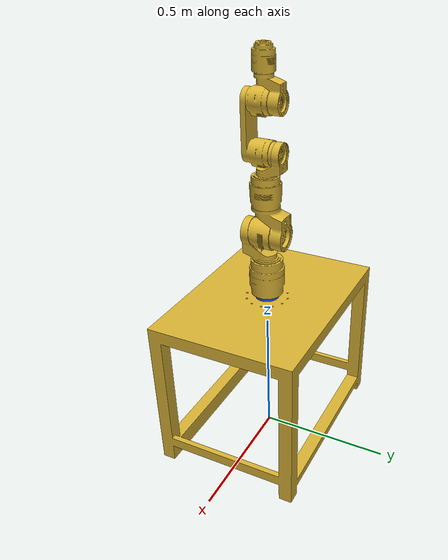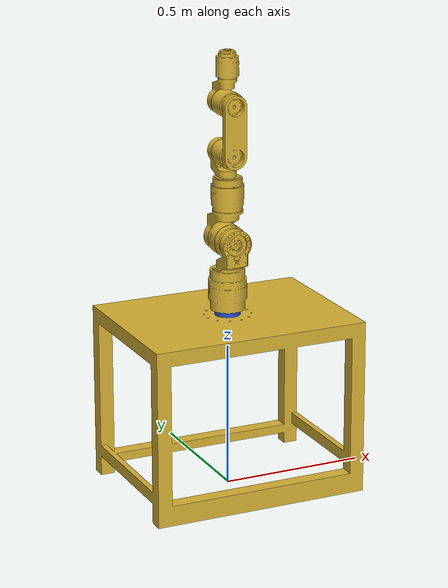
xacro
<?xml version="1.0"?>
<robot name="arm" xmlns:xacro="http://www.ros.org/wiki/xacro">
  <!-- Constants for robot dimensions -->

  <xacro:include filename="$(find lwa_lab_robot)/calibration/calibration.urdf.xacro" />
  <xacro:include filename="$(find lwa_lab_robot)/urdf/materials.urdf.xacro" />

  <xacro:property name="PI" value="3.1415926535897931"/>

  <xacro:property name="M_PI" value="3.1415926535897931"/>

  <xacro:property name="safety_offset" value="0.01"/>

  <xacro:property name="width" value="0.1" /> <!-- Square dimensions (widthxwidth) of beams -->
  <xacro:property name="height1" value="2" /> <!-- Link 1 -->
  <xacro:property name="height2" value="1" /> <!-- Link 2 -->
  <xacro:property name="height3" value="1" /> <!-- Link 3 -->
  <xacro:property name="camera_link" value="0.1" /> <!-- Size of square 'camera' box -->
  <xacro:property name="axel_offset" value="0.05" /> <!-- Space btw top of beam and the each joint -->

  <xacro:property name="base_mass" value="40.0"/>
  <xacro:property name="base_length" value="1.0"/>
  <xacro:property name="base_width" value="0.5"/>
  <xacro:property name="base_height" value="0.25"/>
  <xacro:property name="wheelbase" value="0.6"/>

  <xacro:property name="wheel_radius" value="0.2"/>
  <xacro:property name="wheel_height" value="0.1"/>
  <xacro:property name="wheel_mass" value="2.0"/>
  <xacro:property name="wheel_x_offset" value="0.35" />
  <xacro:property name="wheel_y_offset" value="0.3" />
  <xacro:property name="wheel_z_offset" value="-0.05" />

  <xacro:property name="table_height_offset" value="0.62" />

  <macro name="box_inertia" params="m x y z">
    <inertia  ixx="${m*(y*y+z*z)/12+(1e-6)}" ixy="0" ixz="0" iyy="${m*(x*x+z*z)/12+(1e-6)}" iyz="0" izz="${m*(x*x+z*z)/12+(1e-6)}" />
  </macro>

  <macro name="cylinder_inertia" params="m r h">
    <inertia  ixx="${m*(3*r*r+h*h)/12+(1e-6)}" ixy="0" ixz="0" iyy="${m*(3*r*r+h*h)/12+(1e-6)}" iyz="0" izz="${m*r*r/2+(1e-6)}" />
  </macro>

  <xacro:macro name="make_transmission" params="name">

    <transmission name="${name}_trans">
      <type>transmission_interface/SimpleTransmission</type>
      <joint name="${name}_joint">
        <hardwareInterface>VelocityJointInterface</hardwareInterface>
      </joint>
      <actuator name="${name}_motor">
        <mechanicalReduction>1</mechanicalReduction>
      </actuator>
    </transmission>
  </xacro:macro>

  <link name="world"/>

  <joint name="world_table_fixed" type="fixed">
    <parent link="world"/>
    <child link="robot_base_link"/>
    <origin xyz="0 0 ${table_height_offset}" rpy="0 0 0"/>
  </joint>

  <link name="robot_base_link">
    <collision>
      <origin xyz="0 0 0" rpy="0 0 0"/>
      <geometry>
        <mesh filename="package://lwa_lab_robot/cad/components/table_s.stl" />
      </geometry>
    </collision>

    <visual>
        <origin xyz="0 0 0" rpy="0 0 0" />
        <geometry>
          <mesh filename="package://lwa_lab_robot/cad/components/table_s.stl" />
        </geometry>
        <material name="Schunk/DarkGolden" />
    </visual>

    <inertial>
      <origin xyz="0 0 0" rpy="0 0 0"/>
      <mass value="${base_mass}"/>
      <box_inertia m="${base_mass}" x="${base_length}" y="${base_width}" z="${base_height}"/>
    </inertial>
  </link>

    <joint name="table_mount_joint" type="fixed">
    <parent link="robot_base_link"/>
    <child link="arm_base_link"/>
    <origin xyz="0 0 0" rpy="0 0 0"/>
    <axis xyz="0 1 0" rpy="0 0 0"/>
  </joint>

    <link name="arm_base_link">
      <inertial>
        <origin xyz="0 0 0" rpy="0 0 0"/>
        <mass value="1.0"/>
        <inertia ixx="0.01" ixy="0" ixz="0" iyy="0.01" iyz="0" izz="0.01" />
      </inertial>

      <visual>
        <origin xyz="0 0 0.004" rpy="0 0 0" />
        <geometry>
          <cylinder radius="0.045" length="0.08"/>
        </geometry>
        <material name="Schunk/Blue" />
      </visual>

      <collision>
        <origin xyz="0 0 0.005" rpy="0 0 0" />
        <geometry>
          <box size="0.01 0.01 0.01"/>
        </geometry>
      </collision>
    </link>

    <joint name="arm_1_joint" type="revolute">
        <origin xyz="0 0 0.008" rpy="0 0 0"/>
        <parent link="arm_base_link"/>
        <child link="arm_1_link"/>
        <axis xyz="0 0 -1"/>
        <calibration rising="${arm_1_ref}"/>
        <limit effort="216" velocity="0.43633" lower="${-M_PI+safety_offset}" upper="${M_PI-safety_offset}"/>
    </joint>
    <xacro:make_transmission name="arm_1"/>

    <link name="arm_1_link">
        <inertial>
        <origin xyz="0 0 0" rpy="0 0 0" />
        <mass value="2.0"/>
        <inertia ixx="0.01" ixy="0" ixz="0" iyy="0.01" iyz="0" izz="0.01" />
        </inertial>

        <visual>
        <origin xyz="0 0 0" rpy="0 0 0" />
        <geometry>
            <mesh filename="package://lwa_lab_robot/cad/components/link_1_s.stl" />
        </geometry>
        <material name="Schunk/DarkGolden" />
        </visual>

        <collision>
        <origin xyz="0 0 0" rpy="0 0 0" />
        <geometry>
            <mesh filename="package://lwa_lab_robot/cad/components/link_1_s.stl" />
        </geometry>
        </collision>
    </link>

    <!-- joint between arm_1_link and arm_2_link -->
    <joint name="arm_2_joint" type="revolute">
      <origin xyz="0 0 ${(210.4+37.5)/1000}" rpy="0 0 3.1415"/>
      <parent link="arm_1_link"/>
      <child link="arm_2_link"/>
      <axis xyz="0 1 0"/>
      <calibration rising="${arm_2_ref}"/>
      <limit effort="216" velocity="0.43633" lower="${-2.14 + safety_offset}" upper="${2.14 - safety_offset}"/>
    </joint>
    <xacro:make_transmission name="arm_2"/>

    <link name="arm_2_link">
      <inertial>
        <origin xyz="0 0 0" rpy="0 0 0"/>
        <mass value="2.0"/>
        <inertia ixx="0.03" ixy="0" ixz="0" iyy="0.03" iyz="0" izz="0.03" />
      </inertial>

      <visual>
        <origin xyz="0 0 0" rpy="0 0 0" />
        <geometry>
          <mesh filename="package://lwa_lab_robot/cad/components/link_2_s.stl" />
        </geometry>
        <material name="Schunk/DarkGolden" />
      </visual>

      <collision>
        <origin xyz="0 0 0" rpy="0 0 0" />
        <geometry>
          <mesh filename="package://lwa_lab_robot/cad/components/link_2_s.stl"/>
        </geometry>
      </collision>
    </link>

    <!-- joint between arm_2_link and arm_3_link -->
    <joint name="arm_3_joint" type="revolute">
      <origin xyz="0 0 ${(100-8)/1000}" rpy="0 0 0"/>
      <parent link="arm_2_link"/>
      <child link="arm_3_link"/>
      <axis xyz="0 0 -1"/>
      <calibration rising="${arm_3_ref}"/>
      <limit effort="81.5" velocity="0.4189" lower="${-M_PI + safety_offset}" upper="${M_PI - safety_offset}"/>
    </joint>
    <xacro:make_transmission name="arm_3"/>

    <link name="arm_3_link">
      <inertial>
        <origin xyz="0 0 0" rpy="0 0 0"/>
        <mass value="2.0"/>
        <inertia ixx="0.03" ixy="0" ixz="0" iyy="0.03" iyz="0" izz="0.03" />
      </inertial>

      <visual>
        <origin xyz="0 0 0" rpy="0 0 0" />
        <geometry>
          <mesh filename="package://lwa_lab_robot/cad/components/link_3_s.stl" />
        </geometry>
        <material name="Schunk/DarkGolden" />
      </visual>

      <collision>
        <origin xyz="0 0 0" rpy="0 0 0" />
        <geometry>
          <mesh filename="package://lwa_lab_robot/cad/components/link_3_s.stl"/>
        </geometry>
      </collision>
    </link>

    <!-- joint between arm_3_link and arm_4_link -->
    <joint name="arm_4_joint" type="revolute">
      <origin xyz="0 0 ${(176+30)/1000}" rpy="0 0 3.1415" />
      <parent link="arm_3_link"/>
      <child link="arm_4_link"/>
      <axis xyz="0 1 0" />
      <calibration rising="${arm_4_ref}"/>
      <limit effort="81.5" velocity="0.4189" lower="${-2.18 + safety_offset}" upper="${2.18 - safety_offset}"/>
    </joint>
    <xacro:make_transmission name="arm_4"/>

    <link name="arm_4_link">
      <inertial>
        <origin xyz="0 0 0" rpy="0 0 0"/>
        <mass value="2.0"/>
        <inertia ixx="0.03" ixy="0" ixz="0" iyy="0.03" iyz="0" izz="0.03" />
      </inertial>

      <visual>
        <origin xyz="0 0 0" rpy="0 0 0" />
        <geometry>
          <mesh filename="package://lwa_lab_robot/cad/components/link_4_s.stl"/>
        </geometry>
        <material name="Schunk/DarkGolden" />
      </visual>

      <collision>
        <origin xyz="0 0 0" rpy="0 0 0" />
        <geometry>
          <mesh filename="package://lwa_lab_robot/cad/components/link_4_s.stl"/>
        </geometry>
      </collision>
    </link>

    <!-- joint between arm_4_link and arm_5_link -->
    <joint name="arm_5_joint" type="revolute">
      <origin xyz="0 0 0.17" rpy="0 0 0" />
      <parent link="arm_4_link"/>
      <child link="arm_5_link"/>
      <axis xyz="0 -1 0" />
      <calibration rising="${arm_5_ref}"/>
      <limit effort="20.7" velocity="0.43633" lower="${-M_PI + safety_offset}" upper="${M_PI - safety_offset}"/>
    </joint>
    <xacro:make_transmission name="arm_5"/>

    <link name="arm_5_link">
      <inertial>
        <origin xyz="0 0 0" rpy="0 0 0"/>
        <mass value="2.057856"/>
        <inertia ixx="0.01" ixy="0" ixz="0" iyy="0.01" iyz="0" izz="0.01" />
      </inertial>

      <visual>
        <origin xyz="0 0 0" rpy="0 0 0" />
        <geometry>
          <mesh filename="package://lwa_lab_robot/cad/components/link_5_s.stl" />
        </geometry>
        <material name="Schunk/DarkGolden" />
      </visual>

      <collision>
        <origin xyz="0 0 0" rpy="0 0 0" />
        <geometry>
          <mesh filename="package://lwa_lab_robot/cad/components/link_5_s.stl"/>
        </geometry>
      </collision>
    </link>

    <!-- joint between arm_5_link and arm_6_link -->
    <joint name="arm_6_joint" type="revolute">
      <origin xyz="0 0 ${(80-3.4)/1000}" rpy="0 0 0" />
      <parent link="arm_5_link"/>
      <child link="arm_6_link"/>
      <axis xyz="0 0 -1" />
      <calibration rising="${arm_6_ref}"/>
      <limit effort="15" velocity="1.2566" lower="${-2.0 + safety_offset}" upper="${2.0 - safety_offset}"/>
    </joint>
    <xacro:make_transmission name="arm_6"/>

    <link name="arm_6_link">
      <inertial>
        <origin xyz="0 0 0" rpy="0 0 0"/>
        <mass value="1.120198"/>
        <inertia ixx="0.01" ixy="0" ixz="0" iyy="0.01" iyz="0" izz="0.01" />
      </inertial>

      <visual>
        <origin xyz="0 0 0" rpy="0 0 0" />
        <geometry>
          <mesh filename="package://lwa_lab_robot/cad/components/link_6_s.stl" />
        </geometry>
        <material name="Schunk/DarkGolden" />
      </visual>

      <collision>
        <origin xyz="0 0 0" rpy="0 0 0" />
        <geometry>
          <mesh filename="package://lwa_lab_robot/cad/components/link_6_s.stl"/>
        </geometry>
      </collision>
    </link>

    <gazebo>
        <plugin name="gazebo_ros_control" filename="libgazebo_ros_control.so">
            <robotNamespace>/arm</robotNamespace>
            <robotSimType>gazebo_ros_control/DefaultRobotHWSim</robotSimType>
        </plugin>
    </gazebo>

</robot>

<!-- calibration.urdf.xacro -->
<robot>

	<!-- arm reference positions -->
	<property name="arm_1_ref" value="1.0472" />
	<property name="arm_2_ref" value="0" />
	<property name="arm_3_ref" value="0" />
	<property name="arm_4_ref" value="-0.1744"/>
	<property name="arm_5_ref" value="-1.57" />
	<property name="arm_6_ref" value="0" />

</robot>
